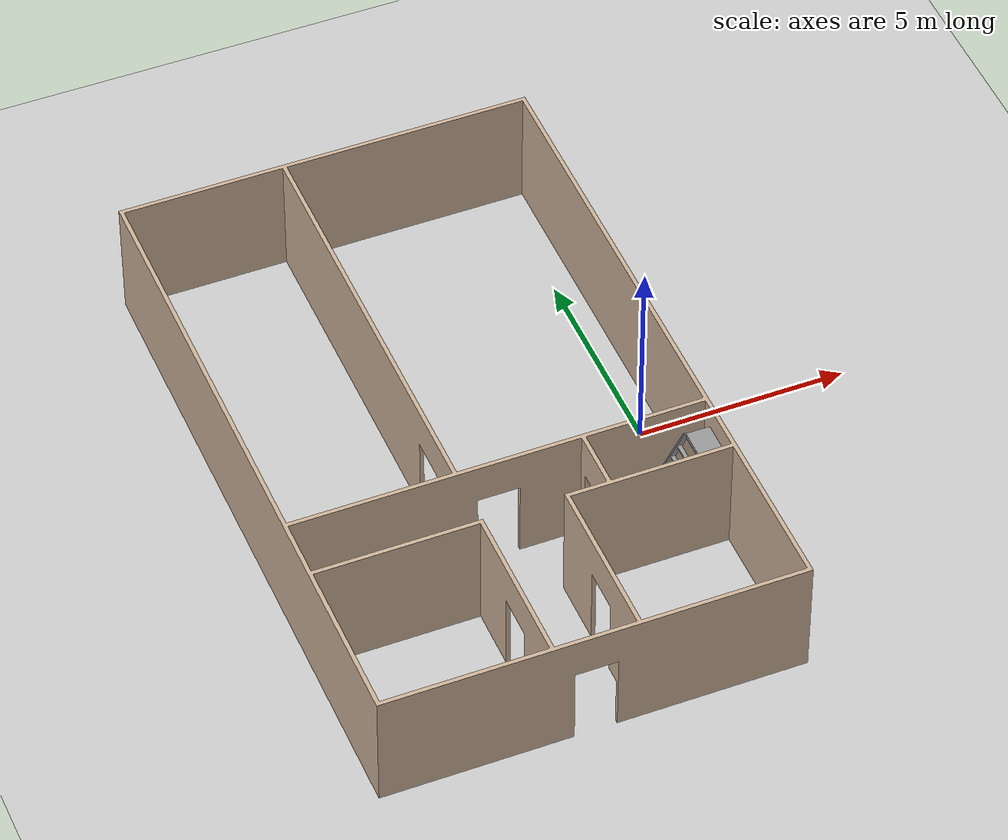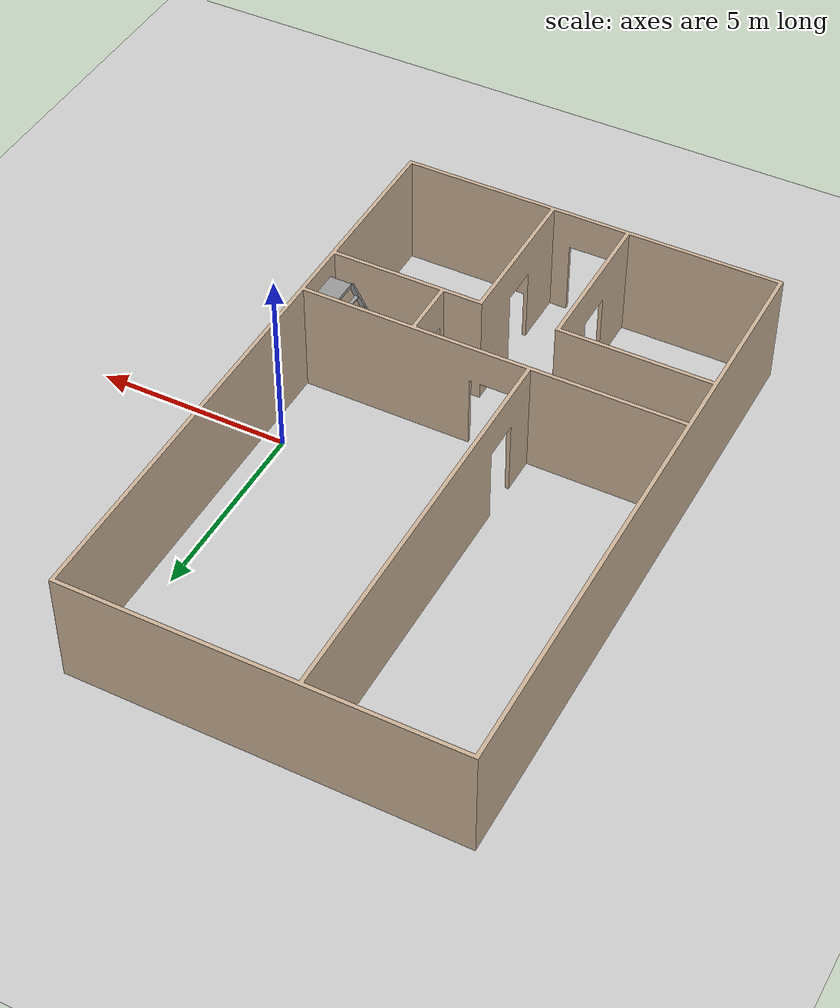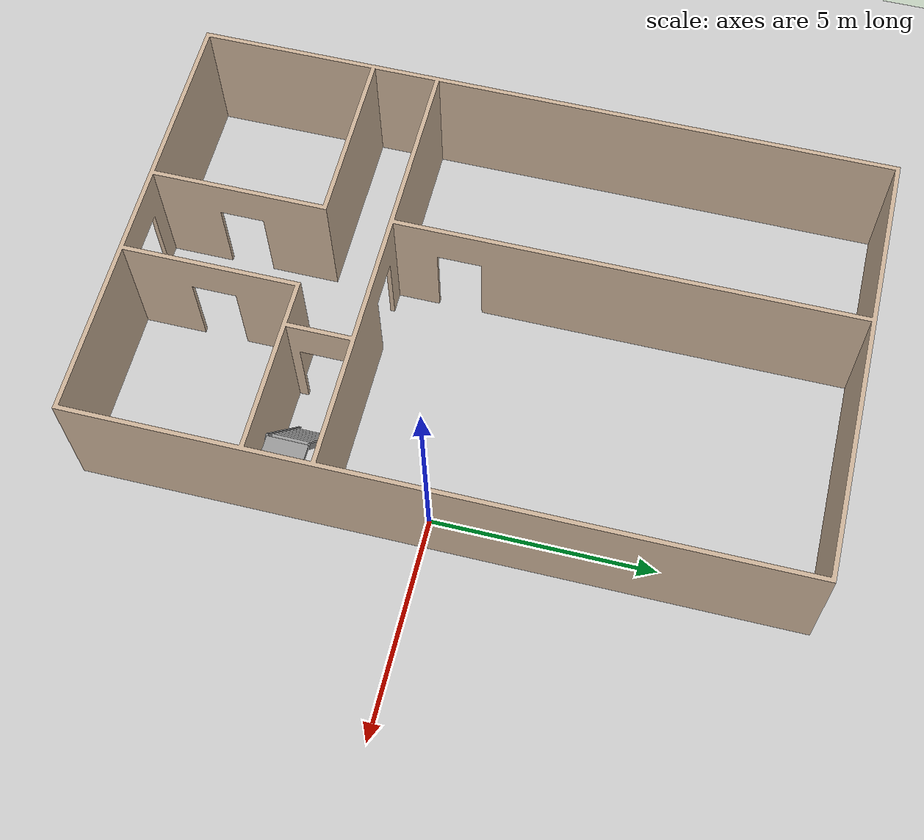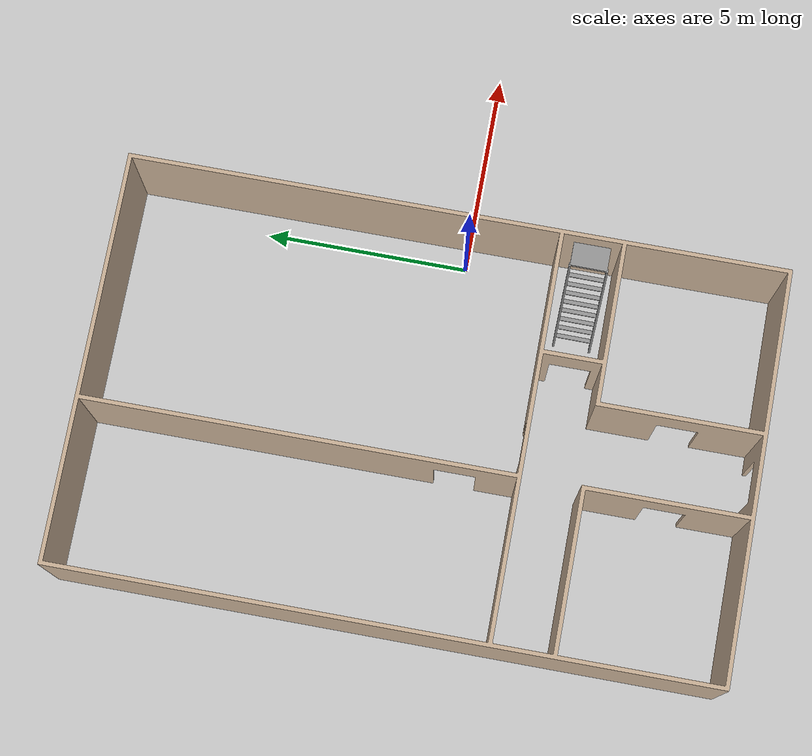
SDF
<sdf version="1.7">
 <world name="house_interior">
  <model name="ground_plane">
   <static>1</static>
   <link name="link">
    <collision name="collision">
     <geometry><plane><normal>0 0 1</normal><size>100 100</size></plane></geometry>
     <surface><friction><ode><mu>100</mu><mu2>50</mu2></ode></friction></surface>
    </collision>
    <visual name="visual">
     <cast_shadows>0</cast_shadows>
     <geometry><plane><normal>0 0 1</normal><size>100 100</size></plane></geometry>
     <material>
      <script><uri>file://media/materials/scripts/gazebo.material</uri><name>Gazebo/Grey</name></script>
     </material>
    </visual>
   </link>
  </model>
  <model name="ladder_60deg_0rails">
   <static>1</static>
   <link name="step0">
    <pose>0 0.15396 0.266667 0 -0 0</pose>
    <inertial>
     <mass>9.75482</mass>
     <inertia>
      <ixx>0.00957124</ixx>
      <iyy>0.65963</iyy>
      <izz>0.666842</izz>
      <ixy>0</ixy>
      <ixz>0</ixz>
      <iyz>0</iyz>
     </inertia>
    </inertial>
    <collision name="collision"><geometry><box><size>0.9 0.1016 0.0381</size></box></geometry></collision>
    <visual name="visual">
     <geometry><box><size>0.9 0.1016 0.0381</size></box></geometry>
     <material>
      <script><uri>file://media/materials/scripts/gazebo.material</uri><name>Gazebo/Grey</name></script>
     </material>
    </visual>
   </link>
   <link name="step1">
    <pose>0 0.30792 0.533333 0 -0 0</pose>
    <inertial>
     <mass>9.75482</mass>
     <inertia>
      <ixx>0.00957124</ixx>
      <iyy>0.65963</iyy>
      <izz>0.666842</izz>
      <ixy>0</ixy>
      <ixz>0</ixz>
      <iyz>0</iyz>
     </inertia>
    </inertial>
    <collision name="collision"><geometry><box><size>0.9 0.1016 0.0381</size></box></geometry></collision>
    <visual name="visual">
     <geometry><box><size>0.9 0.1016 0.0381</size></box></geometry>
     <material>
      <script><uri>file://media/materials/scripts/gazebo.material</uri><name>Gazebo/Grey</name></script>
     </material>
    </visual>
   </link>
   <link name="step2">
    <pose>0 0.46188 0.8 0 -0 0</pose>
    <inertial>
     <mass>9.75482</mass>
     <inertia>
      <ixx>0.00957124</ixx>
      <iyy>0.65963</iyy>
      <izz>0.666842</izz>
      <ixy>0</ixy>
      <ixz>0</ixz>
      <iyz>0</iyz>
     </inertia>
    </inertial>
    <collision name="collision"><geometry><box><size>0.9 0.1016 0.0381</size></box></geometry></collision>
    <visual name="visual">
     <geometry><box><size>0.9 0.1016 0.0381</size></box></geometry>
     <material>
      <script><uri>file://media/materials/scripts/gazebo.material</uri><name>Gazebo/Grey</name></script>
     </material>
    </visual>
   </link>
   <link name="step3">
    <pose>0 0.61584 1.06667 0 -0 0</pose>
    <inertial>
     <mass>9.75482</mass>
     <inertia>
      <ixx>0.00957124</ixx>
      <iyy>0.65963</iyy>
      <izz>0.666842</izz>
      <ixy>0</ixy>
      <ixz>0</ixz>
      <iyz>0</iyz>
     </inertia>
    </inertial>
    <collision name="collision"><geometry><box><size>0.9 0.1016 0.0381</size></box></geometry></collision>
    <visual name="visual">
     <geometry><box><size>0.9 0.1016 0.0381</size></box></geometry>
     <material>
      <script><uri>file://media/materials/scripts/gazebo.material</uri><name>Gazebo/Grey</name></script>
     </material>
    </visual>
   </link>
   <link name="step4">
    <pose>0 0.7698 1.33333 0 -0 0</pose>
    <inertial>
     <mass>9.75482</mass>
     <inertia>
      <ixx>0.00957124</ixx>
      <iyy>0.65963</iyy>
      <izz>0.666842</izz>
      <ixy>0</ixy>
      <ixz>0</ixz>
      <iyz>0</iyz>
     </inertia>
    </inertial>
    <collision name="collision"><geometry><box><size>0.9 0.1016 0.0381</size></box></geometry></collision>
    <visual name="visual">
     <geometry><box><size>0.9 0.1016 0.0381</size></box></geometry>
     <material>
      <script><uri>file://media/materials/scripts/gazebo.material</uri><name>Gazebo/Grey</name></script>
     </material>
    </visual>
   </link>
   <link name="step5">
    <pose>0 0.92376 1.6 0 -0 0</pose>
    <inertial>
     <mass>9.75482</mass>
     <inertia>
      <ixx>0.00957124</ixx>
      <iyy>0.65963</iyy>
      <izz>0.666842</izz>
      <ixy>0</ixy>
      <ixz>0</ixz>
      <iyz>0</iyz>
     </inertia>
    </inertial>
    <collision name="collision"><geometry><box><size>0.9 0.1016 0.0381</size></box></geometry></collision>
    <visual name="visual">
     <geometry><box><size>0.9 0.1016 0.0381</size></box></geometry>
     <material>
      <script><uri>file://media/materials/scripts/gazebo.material</uri><name>Gazebo/Grey</name></script>
     </material>
    </visual>
   </link>
   <link name="step6">
    <pose>0 1.07772 1.86667 0 -0 0</pose>
    <inertial>
     <mass>9.75482</mass>
     <inertia>
      <ixx>0.00957124</ixx>
      <iyy>0.65963</iyy>
      <izz>0.666842</izz>
      <ixy>0</ixy>
      <ixz>0</ixz>
      <iyz>0</iyz>
     </inertia>
    </inertial>
    <collision name="collision"><geometry><box><size>0.9 0.1016 0.0381</size></box></geometry></collision>
    <visual name="visual">
     <geometry><box><size>0.9 0.1016 0.0381</size></box></geometry>
     <material>
      <script><uri>file://media/materials/scripts/gazebo.material</uri><name>Gazebo/Grey</name></script>
     </material>
    </visual>
   </link>
   <link name="step7">
    <pose>0 1.23168 2.13333 0 -0 0</pose>
    <inertial>
     <mass>9.75482</mass>
     <inertia>
      <ixx>0.00957124</ixx>
      <iyy>0.65963</iyy>
      <izz>0.666842</izz>
      <ixy>0</ixy>
      <ixz>0</ixz>
      <iyz>0</iyz>
     </inertia>
    </inertial>
    <collision name="collision"><geometry><box><size>0.9 0.1016 0.0381</size></box></geometry></collision>
    <visual name="visual">
     <geometry><box><size>0.9 0.1016 0.0381</size></box></geometry>
     <material>
      <script><uri>file://media/materials/scripts/gazebo.material</uri><name>Gazebo/Grey</name></script>
     </material>
    </visual>
   </link>
   <link name="landing">
    <pose>0 1.68564 2.4 0 -0 0</pose>
    <inertial>
     <mass>57.6072</mass>
     <inertia><ixx>1.73518</ixx><iyy>3.89545</iyy><izz>5.6167</izz><ixy>0</ixy><ixz>0</ixz><iyz>0</iyz></inertia>
    </inertial>
    <collision name="collision"><geometry><box><size>0.9 0.6 0.1016</size></box></geometry></collision>
    <visual name="visual">
     <geometry><box><size>0.9 0.6 0.1016</size></box></geometry>
     <material>
      <script><uri>file://media/materials/scripts/gazebo.material</uri><name>Gazebo/Grey</name></script>
     </material>
    </visual>
   </link>
   <link name="left_side_wall">
    <pose>-0.45 0.69282 1.2 1.0472 -0 0</pose>
    <collision name="collision"><geometry><box><size>0.0508 2.85128 0.13</size></box></geometry></collision>
    <visual name="visual">
     <geometry><box><size>0.0508 2.85128 0.13</size></box></geometry>
     <material>
      <script><uri>file://media/materials/scripts/gazebo.material</uri><name>Gazebo/Grey</name></script>
     </material>
    </visual>
   </link>
   <link name="right_side_wall">
    <pose>0.45 0.69282 1.2 1.0472 -0 0</pose>
    <collision name="collision"><geometry><box><size>0.0508 2.85128 0.13</size></box></geometry></collision>
    <visual name="visual">
     <geometry><box><size>0.0508 2.85128 0.13</size></box></geometry>
     <material>
      <script><uri>file://media/materials/scripts/gazebo.material</uri><name>Gazebo/Grey</name></script>
     </material>
    </visual>
   </link>
   <pose>-1.43725 -2.91526 0 0 0 -1.57889</pose>
  </model>
  <model name="house_walls_0">
   <link name="link_2">
    <inertial>
     <mass>1</mass>
     <inertia>
      <ixx>0.166667</ixx>
      <ixy>0</ixy>
      <ixz>0</ixz>
      <iyy>0.166667</iyy>
      <iyz>0</iyz>
      <izz>0.166667</izz>
     </inertia>
    </inertial>
    <pose>1e-06 -2e-06 0 0 -0 0</pose>
    <visual name="visual">
     <geometry><mesh><uri>model://house_walls.dae</uri><scale>1 1 1</scale></mesh></geometry>
     <material>
      <ambient>0.5 0.4 0.3 1</ambient>
      <diffuse>0.8 0.7 0.6 1</diffuse>
      <specular>0.3 0.3 0.3 1</specular>
      <emissive>0.1 0.1 0.1 1</emissive>
      <shader type="pixel"/>
      <script><name>ModelPreview_3::link_2::visual_MATERIAL_</name><uri>__default__</uri></script>
     </material>
    </visual>
    <collision name="collision">
     <geometry><mesh><uri>model://house_walls.dae</uri><scale>1 1 1</scale></mesh></geometry>
     <surface>
      <friction>
       <ode><mu>1</mu><mu2>1</mu2><fdir1>0 0 0</fdir1><slip1>0</slip1><slip2>0</slip2></ode>
       <torsional>
        <coefficient>1</coefficient>
        <patch_radius>0</patch_radius>
        <surface_radius>0</surface_radius>
        <use_patch_radius>1</use_patch_radius>
        <ode><slip>0</slip></ode>
       </torsional>
      </friction>
      <bounce><restitution_coefficient>0</restitution_coefficient><threshold>1e+06</threshold></bounce>
      <contact>
       <collide_without_contact>0</collide_without_contact>
       <collide_without_contact_bitmask>1</collide_without_contact_bitmask>
       <collide_bitmask>1</collide_bitmask>
       <ode>
        <soft_cfm>0</soft_cfm>
        <soft_erp>0.2</soft_erp>
        <kp>1e+13</kp>
        <kd>1</kd>
        <max_vel>0.01</max_vel>
        <min_depth>0</min_depth>
       </ode>
       <bullet>
        <split_impulse>1</split_impulse>
        <split_impulse_penetration_threshold>-0.01</split_impulse_penetration_threshold>
        <soft_cfm>0</soft_cfm>
        <soft_erp>0.2</soft_erp>
        <kp>1e+13</kp>
        <kd>1</kd>
       </bullet>
      </contact>
     </surface>
    </collision>
   </link>
   <static>1</static>
   <pose>-4.37432 0.346559 0 0 -0 0</pose>
  </model>
 </world>
</sdf>
